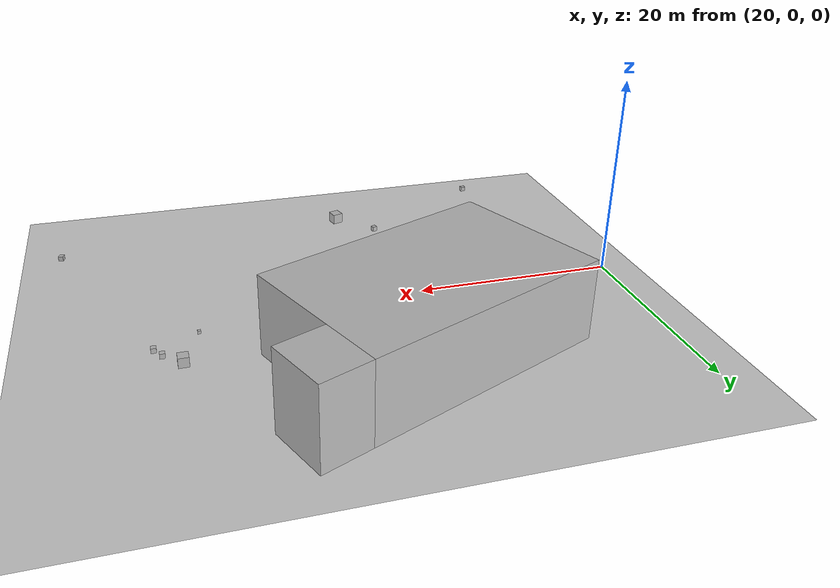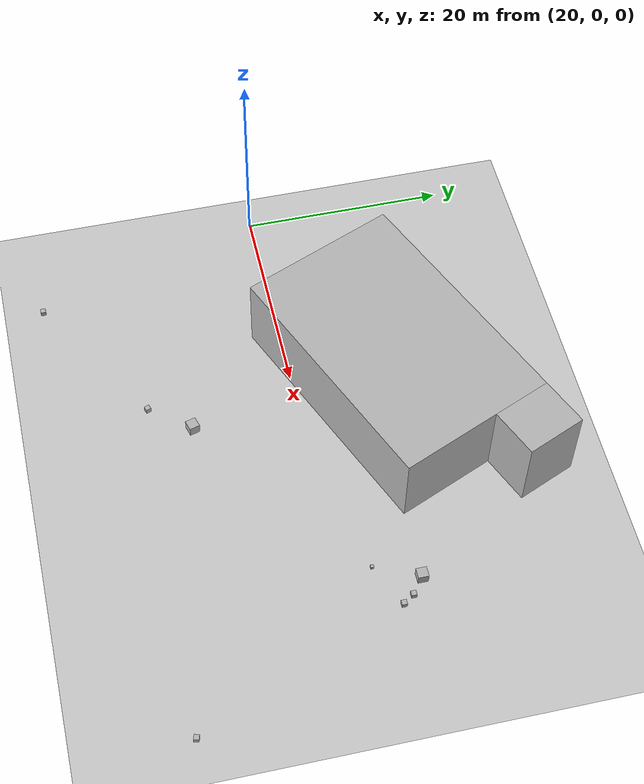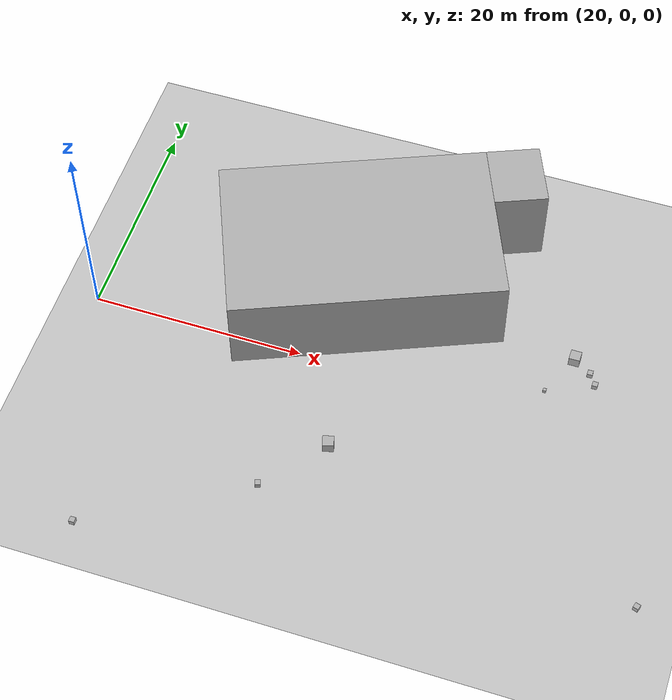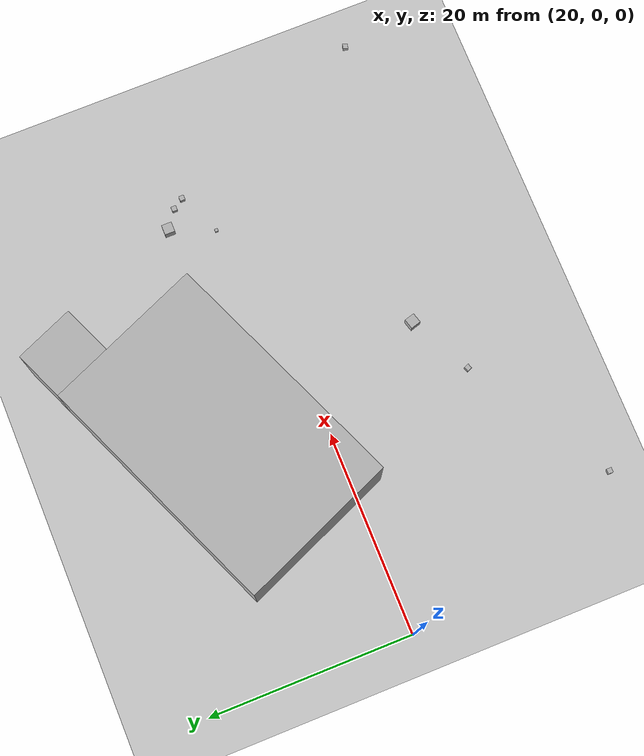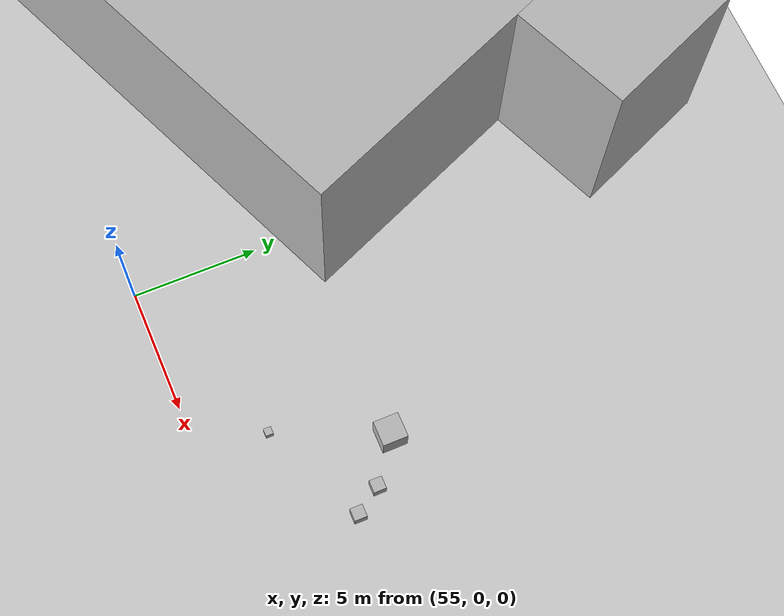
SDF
<sdf version="1.6">
 <world name="vrc_task_1">
  <scene><ambient>0.4 0.4 0.4 1</ambient><background>0.7 0.7 0.7 1</background><shadows>1</shadows></scene>
  <physics name="default_physics" default="0" type="ode">
   <ode>
    <solver>
     <type>quick</type>
     <iters>10</iters>
     <sor>1</sor>
     <use_dynamic_moi_rescaling>0</use_dynamic_moi_rescaling>
    </solver>
    <constraints>
     <cfm>0</cfm>
     <erp>0.2</erp>
     <contact_max_correcting_vel>100</contact_max_correcting_vel>
     <contact_surface_layer>0.001</contact_surface_layer>
    </constraints>
   </ode>
   <max_step_size>0.004</max_step_size>
   <real_time_factor>1</real_time_factor>
   <real_time_update_rate>250</real_time_update_rate>
  </physics>
  <spherical_coordinates>
   <surface_model>EARTH_WGS84</surface_model>
   <latitude_deg>48.688521</latitude_deg>
   <longitude_deg>11.525363</longitude_deg>
   <elevation>488.0</elevation>
  </spherical_coordinates>
  <light name="sun" type="directional">
   <pose>0 0 10 0 -0 0</pose>
   <diffuse>0.8 0.8 0.8 1</diffuse>
   <specular>0.2 0.2 0.2 1</specular>
   <attenuation>
    <range>1000</range>
    <constant>0.9</constant>
    <linear>0.01</linear>
    <quadratic>0.001</quadratic>
   </attenuation>
   <direction>-0.5 0.1 -0.9</direction>
  </light>
  <model name="GroundPlane">
   <static>1</static>
   <link name="link">
    <collision name="collision">
     <geometry><plane><normal>0 0 1</normal><size>394 390</size></plane></geometry>
     <surface><friction><ode><mu>100</mu><mu2>50</mu2></ode></friction></surface>
    </collision>
    <visual name="visual">
     <cast_shadows>0</cast_shadows>
     <geometry><plane><normal>0 0 1</normal><size>210 165</size></plane></geometry>
     <material>
      <script>
       <uri>model://drone_center_groundplane/materials/scripts/</uri>
       <uri>model://drone_center_groundplane/materials/textures/</uri>
       <name>DroneCenterGroundPlane/Image</name>
      </script>
     </material>
    </visual>
   </link>
  </model>
  <gravity>0 0 -9.8066</gravity>
  <magnetic_field>6e-06 2.3e-05 -4.2e-05</magnetic_field>
  <atmosphere type="adiabatic"/>
  <audio><device>default</device></audio>
  <spherical_coordinates>
   <surface_model>EARTH_WGS84</surface_model>
   <latitude_deg>0</latitude_deg>
   <longitude_deg>0</longitude_deg>
   <elevation>0</elevation>
   <heading_deg>0</heading_deg>
  </spherical_coordinates>
  <model name="Hangar">
   <link name="mainBuilding">
    <visual name="body_visual">
     <geometry><box><size>25 16 8</size></box></geometry>
     <material>
      <script>
       <uri>model://Hangar/materials/scripts/</uri>
       <uri>model://Hangar/materials/textures/</uri>
       <name>Hangar/Image</name>
      </script>
     </material>
    </visual>
   </link>
   <link name="robot_link">
    <pose>15 5 0 0 -0 0</pose>
    <visual name="body_visual">
     <geometry><box><size>5 6 8</size></box></geometry>
     <material>
      <script>
       <uri>model://Hangar/materials/scripts/</uri>
       <uri>model://Hangar/materials/textures/</uri>
       <name>Hangar/Image</name>
      </script>
     </material>
    </visual>
   </link>
   <static>1</static>
   <pose>42.6748 9.58642 4 0 -0 0.399924</pose>
  </model>
  <model name="Airport">
   <link name="body">
    <pose>0 0 0.5 3.14159 -1.57046 3.14159</pose>
    <visual name="visual"><geometry><mesh><uri>model://Airport/vo50x50.dae</uri></mesh></geometry></visual>
   </link>
   <static>1</static>
   <pose>74.9968 -15.6922 0 0 -0 -1.88965</pose>
  </model>
  <model name="Firetruck_4">
   <link name="body">
    <pose>0 0 0.5 3.14159 -1.57046 3.14159</pose>
    <visual name="visual"><geometry><mesh><uri>model://Firetruck_4/vo30x30.dae</uri></mesh></geometry></visual>
   </link>
   <static>1</static>
   <pose>62.301 2.75423 0 0 -0 0</pose>
  </model>
  <model name="Cloud">
   <link name="body">
    <pose>0 0 0.5 3.14159 -1.57046 3.14159</pose>
    <visual name="visual"><geometry><mesh><uri>model://Cloud/vo50x50.dae</uri></mesh></geometry></visual>
   </link>
   <static>1</static>
   <pose>40.9486 -14.2724 0 0 0 -1.22562</pose>
  </model>
  <model name="Asteroid">
   <link name="body">
    <pose>0 0 0.5 3.14159 -1.57046 3.14159</pose>
    <visual name="visual"><geometry><mesh><uri>model://Asteroid/vo100x100.dae</uri></mesh></geometry></visual>
   </link>
   <static>1</static>
   <pose>46.253 -10.6161 3.64767 0 -0 -1.29182</pose>
  </model>
  <model name="AED">
   <link name="body">
    <pose>0 0 0.5 3.14159 -1.57046 3.14159</pose>
    <visual name="visual"><geometry><mesh><uri>model://AED/vo100x100.dae</uri></mesh></geometry></visual>
   </link>
   <static>1</static>
   <pose>64.0744 6.97025 0 0 -0 0</pose>
  </model>
  <model name="Car">
   <link name="body">
    <pose>0 0 0.5 3.14159 -1.57046 3.14159</pose>
    <visual name="visual"><geometry><mesh><uri>model://Car/vo50x50.dae</uri></mesh></geometry></visual>
   </link>
   <static>1</static>
   <pose>65.7802 5.73449 0 0 -0 0</pose>
  </model>
  <model name="Firetruck_1">
   <link name="body">
    <pose>0 0 0.5 3.14159 -1.57046 3.14159</pose>
    <visual name="visual"><geometry><mesh><uri>model://Firetruck_1/vo50x50.dae</uri></mesh></geometry></visual>
   </link>
   <static>1</static>
   <pose>66.4884 4.66946 0 0 -0 0</pose>
  </model>
  <model name="Policecar_4">
   <link name="body">
    <pose>0 0 0.5 3.14159 -1.57046 3.14159</pose>
    <visual name="visual"><geometry><mesh><uri>model://Policecar_4/vo50x50.dae</uri></mesh></geometry></visual>
   </link>
   <static>1</static>
   <pose>27.0538 -22.6326 0 0 -0 0</pose>
  </model>
 </world>
</sdf>
